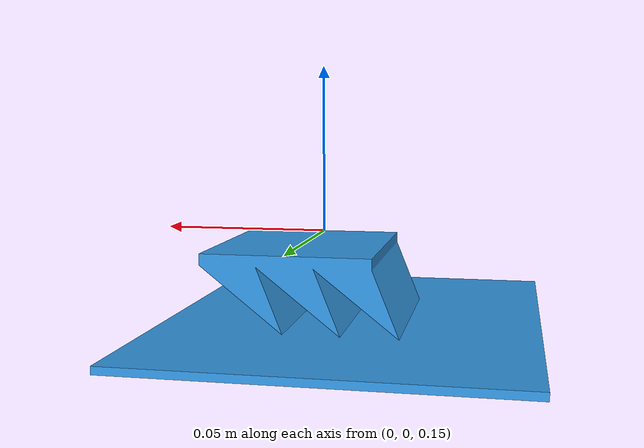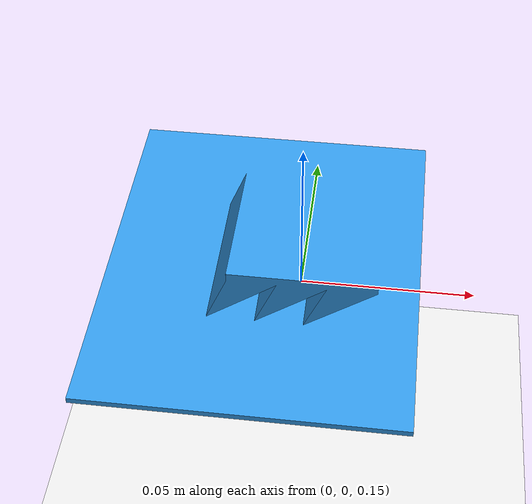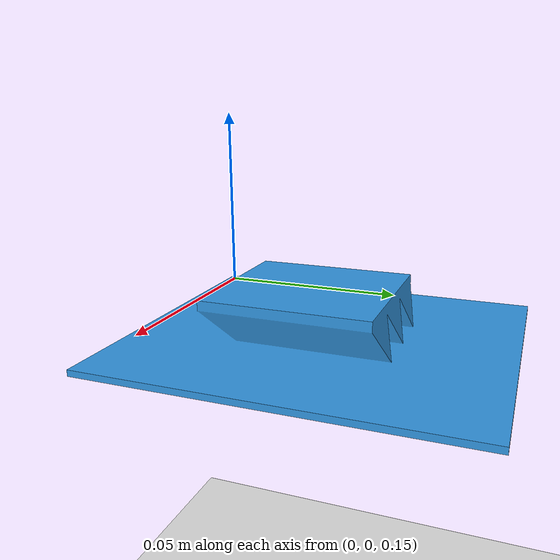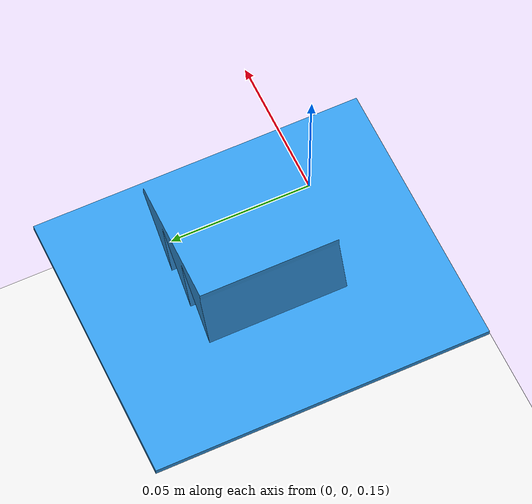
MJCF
<mujoco model="skin_crosssection">
  <option timestep="0.002" gravity="0 0 -9.81"/>

  <asset>
    <!-- STL is likely in mm → scale to meters -->
    <mesh name="skin_mesh"
          file="assets/skin_crosssection.stl"
          scale="0.001 0.001 0.001"/>
  </asset>

  <worldbody>
    <!-- ground -->
    <geom type="plane" size="5 5 0.1" rgba="0.9 0.9 0.9 1"/>

    <!-- skin section -->
    <body name="skin_section" pos="0 0 0.15">
      <freejoint/>

      <geom type="mesh"
            mesh="skin_mesh"
            rgba="0.2 0.6 0.9 1"
            density="300"
            friction="1.0 0.01 0.001"/>
    </body>
  </worldbody>
</mujoco>
